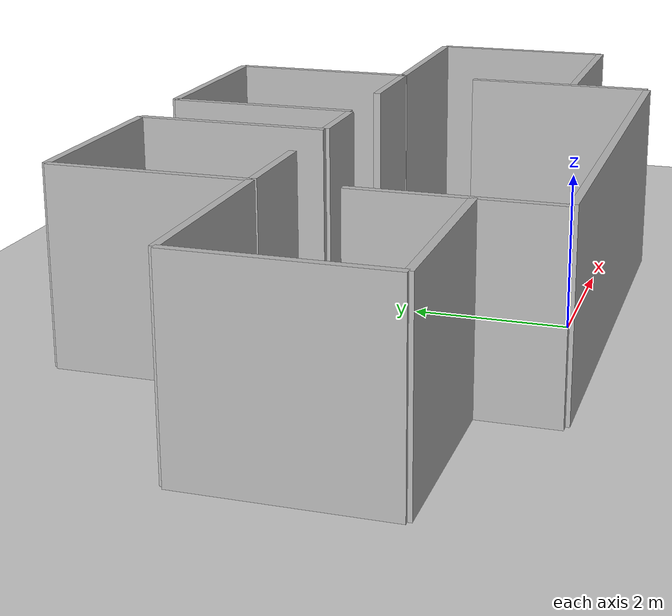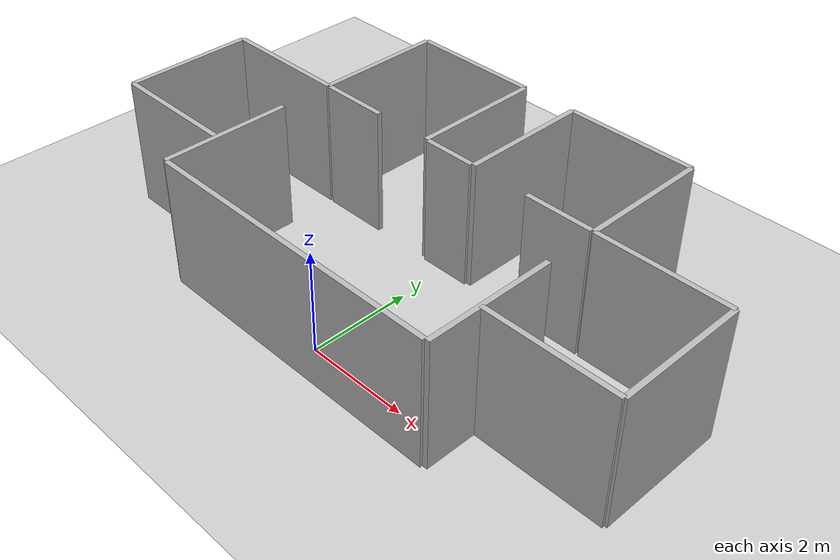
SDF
<?xml version="1.0" ?>
<sdf version="1.6">
  <world name="mahallahroom">
    <gravity>0 0 -9.8</gravity>
    <include><uri>model://sun</uri></include>
    <include><uri>model://ground_plane</uri></include>

    <!-- ==== LOBBY (6x6m) ==== -->

    <!-- Moved Back Wall Forward to Fix Gap -->
    <model name="lobby_back_wall">
      <static>true</static>
      <link name="link">
        <collision name="collision">
          <geometry><box><size>6 0.1 2.5</size></box></geometry>
        </collision>
        <visual name="visual">
          <geometry><box><size>6 0.1 2.5</size></box></geometry>
        </visual>
        <pose>0 -0.5 1.25 0 0 0</pose> <!-- Fixed Y position -->
      </link>
    </model>

    <!-- ==== Front Wall (1.3m - 1.5m - 0.4m - 1.5m - 1.3m) ==== -->

    <!-- Left Wall Segment (1.3m) -->
    <model name="lobby_front_left">
      <static>true</static>
      <link name="link">
        <collision name="collision"><geometry><box><size>1.3 0.1 2.5</size></box></geometry></collision>
        <visual name="visual"><geometry><box><size>1.3 0.1 2.5</size></box></geometry></visual>
        <pose>-2.35 3.05 1.25 0 0 0</pose>
      </link>
    </model>

    <!-- Middle Wall Segment (0.4m) -->
    <model name="lobby_front_middle">
      <static>true</static>
      <link name="link">
        <collision name="collision"><geometry><box><size>1.0 0.1 2.5</size></box></geometry></collision>
        <visual name="visual"><geometry><box><size>1.0 0.1 2.5</size></box></geometry></visual>
        <pose>0 3.05 1.25 0 0 0</pose>
      </link>
    </model>

    <!-- Right Wall Segment (1.3m) -->
    <model name="lobby_front_right">
      <static>true</static>
      <link name="link">
        <collision name="collision"><geometry><box><size>1.3 0.1 2.5</size></box></geometry></collision>
        <visual name="visual"><geometry><box><size>1.3 0.1 2.5</size></box></geometry></visual>
        <pose>2.35 3.05 1.25 0 0 0</pose>
      </link>
    </model>

    <!-- ==== Left Wall (door at back, 1.5m gap) ==== -->
    <model name="lobby_left_front">
      <static>true</static>
      <link name="link">
        <collision name="collision"><geometry><box><size>0.1 2.5 2.5</size></box></geometry></collision>
        <visual name="visual"><geometry><box><size>0.1 2.5 2.5</size></box></geometry></visual>
        <pose>-3.05 0.75 1.25 0 0 0</pose>
      </link>
    </model>

    <!-- ==== Right Wall (door at back, 1.5m gap) ==== -->
    <model name="lobby_right_front">
      <static>true</static>
      <link name="link">
        <collision name="collision"><geometry><box><size>0.1 2.5 2.5</size></box></geometry></collision>
        <visual name="visual"><geometry><box><size>0.1 2.5 2.5</size></box></geometry></visual>
        <pose>3.05 0.75 1.25 0 0 0</pose>
      </link>
    </model>

    <!-- ==== ROOM 1 (TOP-LEFT GAP) ==== -->
    <model name="room1_left">
      <static>true</static>
      <link name="link">
        <collision name="collision"><geometry><box><size>0.1 2.5 2.5</size></box></geometry></collision>
        <visual name="visual"><geometry><box><size>0.1 2.5 2.5</size></box></geometry></visual>
        <pose>-3.05 4.3 1.25 0 0 0</pose>
      </link>
    </model>

    <model name="room1_back">
      <static>true</static>
      <link name="link">
        <collision name="collision"><geometry><box><size>2.5 0.1 2.5</size></box></geometry></collision>
        <visual name="visual"><geometry><box><size>2.5 0.1 2.5</size></box></geometry></visual>
        <pose>-1.8 5.55 1.25 0 0 0</pose>
      </link>
    </model>

    <model name="room1_right">
      <static>true</static>
      <link name="link">
        <collision name="collision"><geometry><box><size>0.1 2.5 2.5</size></box></geometry></collision>
        <visual name="visual"><geometry><box><size>0.1 2.5 2.5</size></box></geometry></visual>
        <pose>-0.55 4.3 1.25 0 0 0</pose>
      </link>
    </model>

    <!-- ==== ROOM 2 (TOP-RIGHT GAP) ==== -->
    <model name="room2_left">
      <static>true</static>
      <link name="link">
        <collision name="collision"><geometry><box><size>0.1 2.5 2.5</size></box></geometry></collision>
        <visual name="visual"><geometry><box><size>0.1 2.5 2.5</size></box></geometry></visual>
        <pose>0.55 4.3 1.25 0 0 0</pose>
      </link>
    </model>

    <model name="room2_back">
      <static>true</static>
      <link name="link">
        <collision name="collision"><geometry><box><size>2.5 0.1 2.5</size></box></geometry></collision>
        <visual name="visual"><geometry><box><size>2.5 0.1 2.5</size></box></geometry></visual>
        <pose>1.8 5.55 1.25 0 0 0</pose>
      </link>
    </model>

    <model name="room2_right">
      <static>true</static>
      <link name="link">
        <collision name="collision"><geometry><box><size>0.1 2.5 2.5</size></box></geometry></collision>
        <visual name="visual"><geometry><box><size>0.1 2.5 2.5</size></box></geometry></visual>
        <pose>3.05 4.3 1.25 0 0 0</pose>
      </link>
    </model>

    <!-- ==== ROOM 3 ==== -->
    <model name="room3_front">
      <static>true</static>
      <link name="link">
        <collision name="collision"><geometry><box><size>2.5 0.1 2.5</size></box></geometry></collision>
        <visual name="visual"><geometry><box><size>2.5 0.1 2.5</size></box></geometry></visual>
        <pose>-4.3 3.05 1.25 0 0 0</pose>
      </link>
    </model>

    <model name="room3_back">
      <static>true</static>
      <link name="link">
        <collision name="collision"><geometry><box><size>2.5 0.1 2.5</size></box></geometry></collision>
        <visual name="visual"><geometry><box><size>2.5 0.1 2.5</size></box></geometry></visual>
        <pose>-4.3 0.55 1.25 0 0 0</pose>
      </link>
    </model>

    <model name="room3_left">
      <static>true</static>
      <link name="link">
        <collision name="collision"><geometry><box><size>0.1 2.5 2.5</size></box></geometry></collision>
        <visual name="visual"><geometry><box><size>0.1 2.5 2.5</size></box></geometry></visual>
        <pose>-5.55 1.8 1.25 0 0 0</pose>
      </link>
    </model>

    <!-- ==== ROOM 4 ==== -->
    <model name="room4_front">
      <static>true</static>
      <link name="link">
        <collision name="collision"><geometry><box><size>2.5 0.1 2.5</size></box></geometry></collision>
        <visual name="visual"><geometry><box><size>2.5 0.1 2.5</size></box></geometry></visual>
        <pose>4.3 3.05 1.25 0 0 0</pose>
      </link>
    </model>

    <model name="room4_back">
      <static>true</static>
      <link name="link">
        <collision name="collision"><geometry><box><size>2.5 0.1 2.5</size></box></geometry></collision>
        <visual name="visual"><geometry><box><size>2.5 0.1 2.5</size></box></geometry></visual>
        <pose>4.3 0.55 1.25 0 0 0</pose>
      </link>
    </model>

    <model name="room4_right">
      <static>true</static>
      <link name="link">
        <collision name="collision"><geometry><box><size>0.1 2.5 2.5</size></box></geometry></collision>
        <visual name="visual"><geometry><box><size>0.1 2.5 2.5</size></box></geometry></visual>
        <pose>5.55 1.8 1.25 0 0 0</pose>
      </link>
    </model>

  </world>
</sdf>
